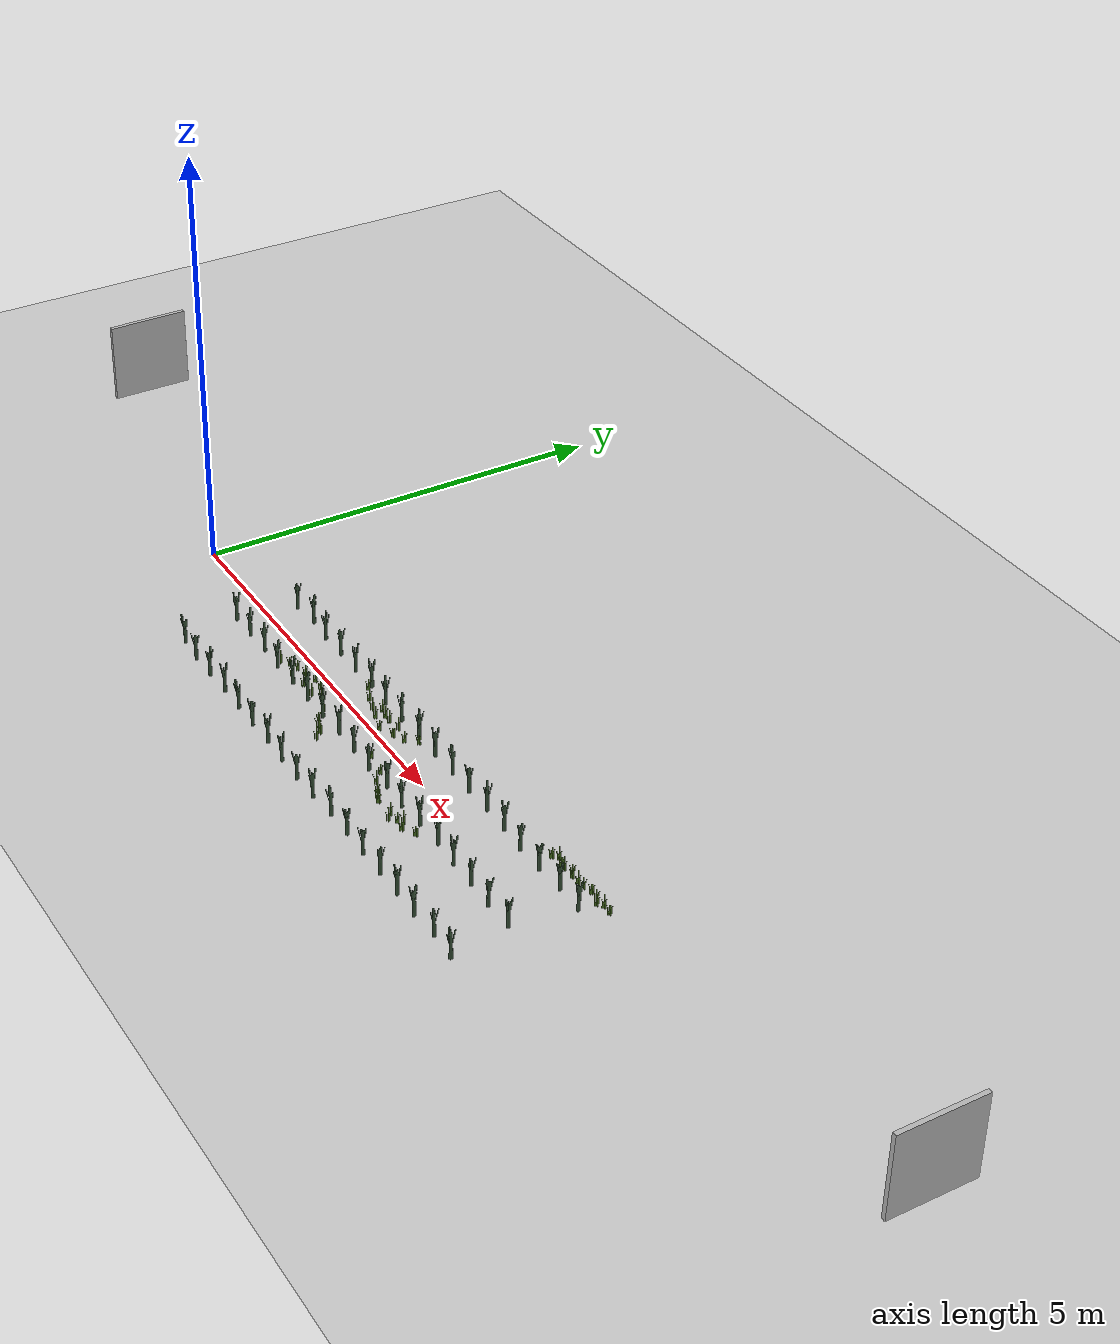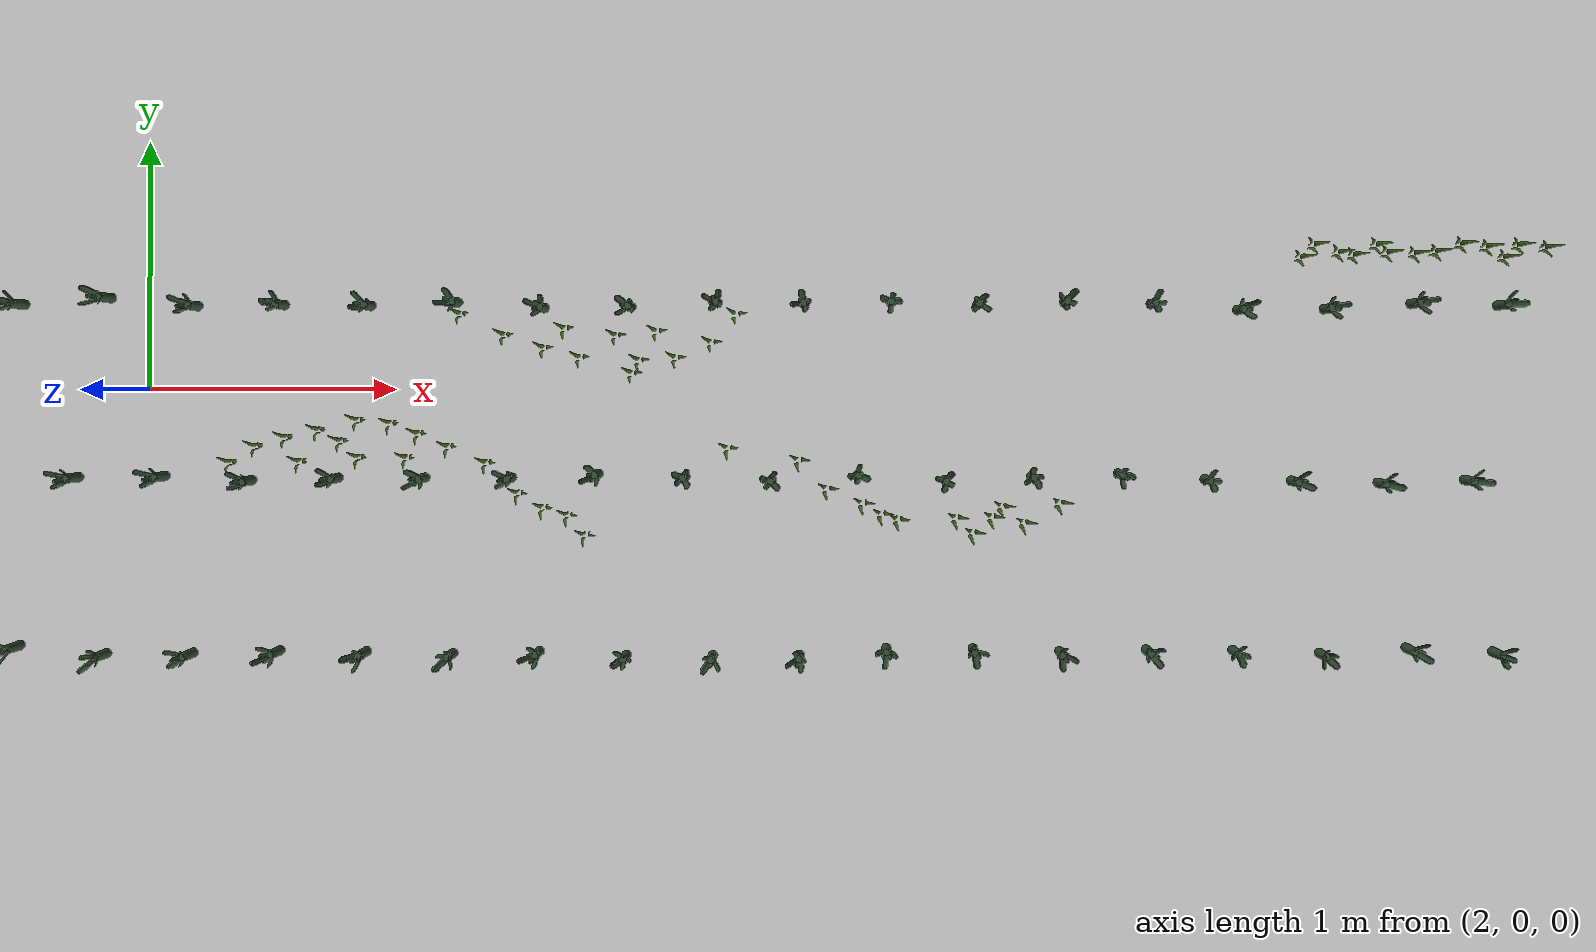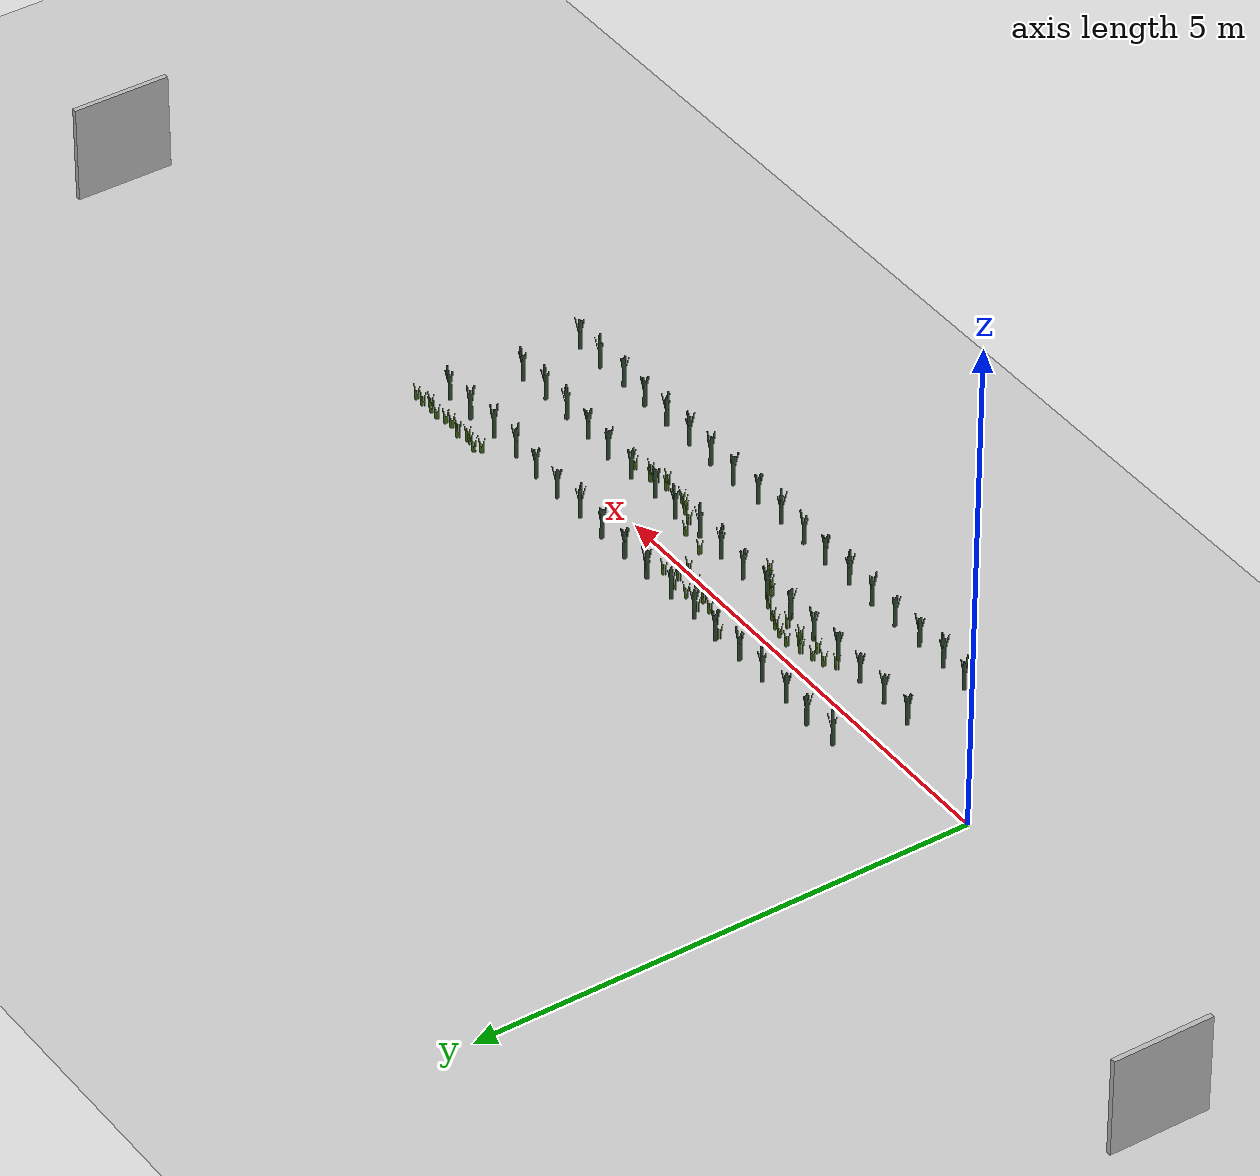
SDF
<sdf version="1.6">
 <world name="default">
  <light name="sun" type="directional">
   <pose>0 0 10 0 -0 0</pose>
   <diffuse>0.5 0.5 0.5 1</diffuse>
   <specular>0.1 0.1 0.1 1</specular>
   <attenuation>
    <range>1000</range>
    <constant>0.9</constant>
    <linear>0.01</linear>
    <quadratic>0.001</quadratic>
   </attenuation>
   <direction>0.9 0.5 -1</direction>
  </light>
  <scene><background>130 200 255 1</background><ambient>130 140 140 1</ambient></scene>
  <include><uri>model://Sign</uri><pose>12 1 0 0 0 0</pose><static>1</static></include>
  <include><uri>model://Sign</uri><pose>-4 1 0 0 0 0</pose><static>1</static></include>
  <include><uri>model://dirt_plane</uri></include>
  <include><uri>model://Leek</uri><pose>1.500000 0.340173 0.15 0 0 -88.447036</pose><static>0</static></include>
  <include><uri>model://Leek</uri><pose>1.850000 0.367709 0.15 0 0 159.377582</pose><static>0</static></include>
  <include>
   <uri>model://Leek</uri>
   <pose>2.200000 0.336135 0.15 0 0 -124.789039</pose>
   <static>0</static>
  </include>
  <include><uri>model://Leek</uri><pose>2.550000 0.341582 0.15 0 0 -75.764405</pose><static>0</static></include>
  <include>
   <uri>model://Leek</uri>
   <pose>2.900000 0.338859 0.15 0 0 -100.265128</pose>
   <static>0</static>
  </include>
  <include><uri>model://Leek</uri><pose>3.250000 0.353683 0.15 0 0 33.151316</pose><static>0</static></include>
  <include>
   <uri>model://Leek</uri>
   <pose>3.600000 0.332666 0.15 0 0 -156.007678</pose>
   <static>0</static>
  </include>
  <include>
   <uri>model://Leek</uri>
   <pose>3.950000 0.337700 0.15 0 0 -110.701626</pose>
   <static>0</static>
  </include>
  <include><uri>model://Leek</uri><pose>4.300000 0.355006 0.15 0 0 45.056901</pose><static>0</static></include>
  <include><uri>model://Leek</uri><pose>4.650000 0.351589 0.15 0 0 14.303026</pose><static>0</static></include>
  <include><uri>model://Leek</uri><pose>5.000000 0.358003 0.15 0 0 72.026591</pose><static>0</static></include>
  <include><uri>model://Leek</uri><pose>5.350000 0.351133 0.15 0 0 10.200760</pose><static>0</static></include>
  <include><uri>model://Leek</uri><pose>5.700000 0.361284 0.15 0 0 101.555401</pose><static>0</static></include>
  <include><uri>model://Leek</uri><pose>6.050000 0.355054 0.15 0 0 45.482131</pose><static>0</static></include>
  <include>
   <uri>model://Leek</uri>
   <pose>6.400000 0.331729 0.15 0 0 -164.437789</pose>
   <static>0</static>
  </include>
  <include>
   <uri>model://Leek</uri>
   <pose>6.750000 0.336580 0.15 0 0 -120.776538</pose>
   <static>0</static>
  </include>
  <include><uri>model://Leek</uri><pose>7.100000 0.358219 0.15 0 0 73.972292</pose><static>0</static></include>
  <include><uri>model://Leek</uri><pose>7.450000 0.352793 0.15 0 0 25.139902</pose><static>0</static></include>
  <include>
   <uri>model://Leek</uri>
   <pose>1.369412 -0.351205 0.15 0 0 -10.848566</pose>
   <static>0</static>
  </include>
  <include>
   <uri>model://Leek</uri>
   <pose>1.719412 -0.355486 0.15 0 0 -49.376952</pose>
   <static>0</static>
  </include>
  <include><uri>model://Leek</uri><pose>2.069412 -0.349901 0.15 0 0 0.893586</pose><static>0</static></include>
  <include>
   <uri>model://Leek</uri>
   <pose>2.419412 -0.365992 0.15 0 0 -143.924926</pose>
   <static>0</static>
  </include>
  <include>
   <uri>model://Leek</uri>
   <pose>2.769412 -0.355537 0.15 0 0 -49.837298</pose>
   <static>0</static>
  </include>
  <include>
   <uri>model://Leek</uri>
   <pose>3.119412 -0.353944 0.15 0 0 -35.496644</pose>
   <static>0</static>
  </include>
  <include>
   <uri>model://Leek</uri>
   <pose>3.469412 -0.353409 0.15 0 0 -30.681226</pose>
   <static>0</static>
  </include>
  <include>
   <uri>model://Leek</uri>
   <pose>3.819412 -0.337213 0.15 0 0 115.082555</pose>
   <static>0</static>
  </include>
  <include><uri>model://Leek</uri><pose>4.169412 -0.347990 0.15 0 0 18.092581</pose><static>0</static></include>
  <include>
   <uri>model://Leek</uri>
   <pose>4.519412 -0.359840 0.15 0 0 -88.562507</pose>
   <static>0</static>
  </include>
  <include>
   <uri>model://Leek</uri>
   <pose>4.869412 -0.336060 0.15 0 0 125.464205</pose>
   <static>0</static>
  </include>
  <include>
   <uri>model://Leek</uri>
   <pose>5.219412 -0.358256 0.15 0 0 -74.305237</pose>
   <static>0</static>
  </include>
  <include><uri>model://Leek</uri><pose>5.569412 -0.342112 0.15 0 0 70.988351</pose><static>0</static></include>
  <include>
   <uri>model://Leek</uri>
   <pose>5.919412 -0.330132 0.15 0 0 178.816123</pose>
   <static>0</static>
  </include>
  <include>
   <uri>model://Leek</uri>
   <pose>6.269412 -0.351917 0.15 0 0 -17.255756</pose>
   <static>0</static>
  </include>
  <include>
   <uri>model://Leek</uri>
   <pose>6.619412 -0.357033 0.15 0 0 -63.294588</pose>
   <static>0</static>
  </include>
  <include>
   <uri>model://Leek</uri>
   <pose>6.969412 -0.364687 0.15 0 0 -132.184699</pose>
   <static>0</static>
  </include>
  <include>
   <uri>model://Leek</uri>
   <pose>7.319412 -0.352097 0.15 0 0 -18.874128</pose>
   <static>0</static>
  </include>
  <include>
   <uri>model://Leek</uri>
   <pose>1.484378 -1.035654 0.15 0 0 129.115225</pose>
   <static>0</static>
  </include>
  <include>
   <uri>model://Leek</uri>
   <pose>1.834378 -1.066972 0.15 0 0 -152.746824</pose>
   <static>0</static>
  </include>
  <include>
   <uri>model://Leek</uri>
   <pose>2.184378 -1.063885 0.15 0 0 -124.964739</pose>
   <static>0</static>
  </include>
  <include>
   <uri>model://Leek</uri>
   <pose>2.534378 -1.053270 0.15 0 0 -29.426862</pose>
   <static>0</static>
  </include>
  <include>
   <uri>model://Leek</uri>
   <pose>2.884378 -1.056624 0.15 0 0 -59.611696</pose>
   <static>0</static>
  </include>
  <include>
   <uri>model://Leek</uri>
   <pose>3.234378 -1.063511 0.15 0 0 -121.600760</pose>
   <static>0</static>
  </include>
  <include>
   <uri>model://Leek</uri>
   <pose>3.584378 -1.053301 0.15 0 0 -29.710869</pose>
   <static>0</static>
  </include>
  <include>
   <uri>model://Leek</uri>
   <pose>3.934378 -1.068813 0.15 0 0 -169.315763</pose>
   <static>0</static>
  </include>
  <include>
   <uri>model://Leek</uri>
   <pose>4.284378 -1.069092 0.15 0 0 -171.832265</pose>
   <static>0</static>
  </include>
  <include>
   <uri>model://Leek</uri>
   <pose>4.634378 -1.066558 0.15 0 0 -149.022220</pose>
   <static>0</static>
  </include>
  <include>
   <uri>model://Leek</uri>
   <pose>4.984378 -1.038509 0.15 0 0 103.416106</pose>
   <static>0</static>
  </include>
  <include><uri>model://Leek</uri><pose>5.334378 -1.038994 0.15 0 0 99.055333</pose><static>0</static></include>
  <include><uri>model://Leek</uri><pose>5.684378 -1.048805 0.15 0 0 10.754929</pose><static>0</static></include>
  <include><uri>model://Leek</uri><pose>6.034378 -1.041727 0.15 0 0 74.461307</pose><static>0</static></include>
  <include><uri>model://Leek</uri><pose>6.384378 -1.042148 0.15 0 0 70.664896</pose><static>0</static></include>
  <include>
   <uri>model://Leek</uri>
   <pose>6.734378 -1.052557 0.15 0 0 -23.014204</pose>
   <static>0</static>
  </include>
  <include>
   <uri>model://Leek</uri>
   <pose>7.084378 -1.031216 0.15 0 0 169.060088</pose>
   <static>0</static>
  </include>
  <include><uri>model://Leek</uri><pose>7.434378 -1.045677 0.15 0 0 38.905673</pose><static>0</static></include>
  <include><uri>model://Grass</uri><pose>2.34029 -0.291745 0 0 -0 0</pose><static>1</static></include>
  <include><uri>model://Grass</uri><pose>2.4448 -0.226501 0 0 -0 0</pose><static>1</static></include>
  <include><uri>model://Grass</uri><pose>2.56409 -0.190453 0 0 -0 0</pose><static>1</static></include>
  <include><uri>model://Grass</uri><pose>2.69556 -0.160797 0 0 -0 0</pose><static>1</static></include>
  <include><uri>model://Grass</uri><pose>3.05031 -0.27232 0 0 -0 0</pose><static>1</static></include>
  <include><uri>model://Grass</uri><pose>3.26434 0.309193 0 0 -0 0</pose><static>1</static></include>
  <include><uri>model://Grass</uri><pose>3.44294 0.224645 0 0 -0 0</pose><static>1</static></include>
  <include><uri>model://Grass</uri><pose>4.74557 -0.391794 0 0 -0 0</pose><static>1</static></include>
  <include><uri>model://Grass</uri><pose>5.03233 -0.515364 0 0 -0 0</pose><static>1</static></include>
  <include><uri>model://Grass</uri><pose>4.96565 -0.493128 0 0 -0 0</pose><static>1</static></include>
  <include><uri>model://Grass</uri><pose>4.34545 -0.229694 0 0 -0 0</pose><static>1</static></include>
  <include><uri>model://Grass</uri><pose>4.63102 -0.277476 0 0 -0 0</pose><static>1</static></include>
  <include><uri>model://Grass</uri><pose>7.64122 0.590489 0 0 -0 0</pose><static>1</static></include>
  <include><uri>model://Grass</uri><pose>7.40155 0.592621 0 0 -0 0</pose><static>1</static></include>
  <include><uri>model://Grass</uri><pose>7.1964 0.573075 0 0 -0 0</pose><static>1</static></include>
  <include><uri>model://Grass</uri><pose>7 0.567642 0 0 -0 0</pose><static>1</static></include>
  <include><uri>model://Grass</uri><pose>6.80373 0.568265 0 0 -0 0</pose><static>1</static></include>
  <include><uri>model://Grass</uri><pose>6.65038 0.548206 0 0 -0 0</pose><static>1</static></include>
  <include><uri>model://Grass</uri><pose>6.86338 0.557376 0 0 -0 0</pose><static>1</static></include>
  <include><uri>model://Grass</uri><pose>5.33412 -0.567918 0 0 -0 0</pose><static>1</static></include>
  <include><uri>model://Grass</uri><pose>6.9559 0.599059 0 0 -0 0</pose><static>1</static></include>
  <include><uri>model://Grass</uri><pose>7.11013 0.565026 0 0 -0 0</pose><static>1</static></include>
  <include><uri>model://Grass</uri><pose>7.29787 0.603918 0 0 -0 0</pose><static>1</static></include>
  <include><uri>model://Grass</uri><pose>7.47161 0.550224 0 0 -0 0</pose><static>1</static></include>
  <include><uri>model://Grass</uri><pose>7.52756 0.599362 0 0 -0 0</pose><static>1</static></include>
  <include><uri>model://Grass</uri><pose>6.70457 0.598916 0 0 -0 0</pose><static>1</static></include>
  <include><uri>model://Grass</uri><pose>5.53959 -0.526766 0 0 -0 0</pose><static>1</static></include>
  <include><uri>model://Grass</uri><pose>5.68421 -0.447125 0 0 -0 0</pose><static>1</static></include>
  <include><uri>model://Grass</uri><pose>5.41154 -0.504498 0 0 -0 0</pose><static>1</static></include>
  <include><uri>model://Grass</uri><pose>5.26645 -0.508658 0 0 -0 0</pose><static>1</static></include>
  <include><uri>model://Grass</uri><pose>5.26645 -0.508658 0 0 -0 0</pose><static>1</static></include>
  <include><uri>model://Grass</uri><pose>5.45141 -0.46103 0 0 -0 0</pose><static>1</static></include>
  <include><uri>model://Grass</uri><pose>4.88901 -0.449994 0 0 -0 0</pose><static>1</static></include>
  <include><uri>model://Grass</uri><pose>3.60262 0.172685 0 0 -0 0</pose><static>1</static></include>
  <include><uri>model://Grass</uri><pose>3.7492 0.134706 0 0 -0 0</pose><static>1</static></include>
  <include><uri>model://Grass</uri><pose>3.95819 0.072067 0 0 -0 0</pose><static>1</static></include>
  <include><uri>model://Grass</uri><pose>4.13436 0.134191 0 0 -0 0</pose><static>1</static></include>
  <include><uri>model://Grass</uri><pose>4.27786 0.19599 0 0 -0 0</pose><static>1</static></include>
  <include><uri>model://Grass</uri><pose>4.37709 0.310747 0 0 -0 0</pose><static>1</static></include>
  <include><uri>model://Grass</uri><pose>4 0.1228 0.168952 0 -0 0</pose><static>1</static></include>
  <include><uri>model://Grass</uri><pose>2.85285 -0.120544 0 0 -0 0</pose><static>1</static></include>
  <include><uri>model://Grass</uri><pose>4.05725 0.241411 0 0 -0 0</pose><static>1</static></include>
  <include><uri>model://Grass</uri><pose>3.6865 0.251185 0 0 -0 0</pose><static>1</static></include>
  <include><uri>model://Grass</uri><pose>3.8936 0.223629 0 0 -0 0</pose><static>1</static></include>
  <include><uri>model://Grass</uri><pose>2.98511 -0.13313 0 0 -0 0</pose><static>1</static></include>
  <include><uri>model://Grass</uri><pose>3.09742 -0.174831 0 0 -0 0</pose><static>1</static></include>
  <include><uri>model://Grass</uri><pose>3.2186 -0.227124 0 0 -0 00</pose><static>1</static></include>
  <include><uri>model://Grass</uri><pose>3.37189 -0.291335 0 0 -0 0</pose><static>1</static></include>
  <include><uri>model://Grass</uri><pose>3.50189 -0.41335 0 0 -0 0</pose><static>1</static></include>
  <include><uri>model://Grass</uri><pose>3.60189 -0.471335 0 0 -0 0</pose><static>1</static></include>
  <include><uri>model://Grass</uri><pose>3.70189 -0.501335 0 0 -0 0</pose><static>1</static></include>
  <include><uri>model://Grass</uri><pose>3.77189 -0.581335 0 0 -0 0</pose><static>1</static></include>
  <include><uri>model://Grass</uri><pose>2.85756 -0.270177 0 0 -0 0</pose><static>1</static></include>
  <include><uri>model://Grass</uri><pose>2.62087 -0.288178 0 0 -0 0</pose><static>1</static></include>
  <include><uri>model://Grass</uri><pose>2.78504 -0.204906 0 0 -0 0</pose><static>1</static></include>
 </world>
</sdf>

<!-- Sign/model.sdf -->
<sdf version='1.6'>
  <model name='Sign'>
    <link name='link'>
      <pose frame=''>0 0 0 0 -0 0</pose>
      <inertial>
        <mass>1</mass>
        <inertia>
          <ixx>0.166667</ixx>
          <ixy>0</ixy>
          <ixz>0</ixz>
          <iyy>0.166667</iyy>
          <iyz>0</iyz>
          <izz>0.166667</izz>
        </inertia>
        <pose frame=''>0 0 0 0 -0 0</pose>
      </inertial>
      <self_collide>0</self_collide>
      <kinematic>0</kinematic>
      <gravity>1</gravity>
      <visual name='visual'>
        <geometry>
          <box>
            <size>1 0.05 1</size>
          </box>
        </geometry>
        <material>
          <script>
            <uri>model://ground_plane/materials/scripts/my_ground_plane.material</uri>
            <uri>model://ground_plane/materials/textures</uri>
            <name>my_ground_plane/NaioLogo</name>
          </script>
        </material>
        <pose frame=''>0 0 0.5 0 -0 1.57</pose>
        <cast_shadows>1</cast_shadows>
        <transparency>0</transparency>
      </visual>
    </link>
    <static>1</static>
    <allow_auto_disable>1</allow_auto_disable>
  </model>
</sdf>

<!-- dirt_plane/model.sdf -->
<sdf version="1.4">
<model name="dirt_plane">
  <static>true</static>
    <link name="link">
      <collision name="collision">
        <geometry>
          <plane>
            <normal>0 0 1</normal>
            <size>100 100</size>
          </plane>
        </geometry>
        <surface>
          <friction>
            <ode>
              <mu>100</mu>
              <mu2>50</mu2>
            </ode>
          </friction>
        </surface>
      </collision>
      <visual name="visual">
        <cast_shadows>false</cast_shadows>
        <geometry>
          <plane>
            <normal>0 0 1</normal>
            <size>100 100</size>
          </plane>
        </geometry>
        <material>
          <script>
            <uri>model://ground_plane/materials/scripts/my_ground_plane.material</uri>
            <uri>model://ground_plane/materials/textures</uri>
            <name>my_ground_plane/Dirt</name>
          </script>
        </material>
      </visual>
    </link>
  </model>
</sdf>

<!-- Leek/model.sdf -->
<sdf version='1.6'>
  <model name='Leek'>
    <link name='link'>
      <pose frame=''>0 0 0 0 -0 0</pose>
      <inertial>
        <mass>1</mass>
        <inertia>
          <ixx>0.145833</ixx>
          <ixy>0</ixy>
          <ixz>0</ixz>
          <iyy>0.145833</iyy>
          <iyz>0</iyz>
          <izz>0.125</izz>
        </inertia>
        <pose frame=''>0 0 0 0 -0 0</pose>
      </inertial>
      <self_collide>0</self_collide>
      <kinematic>0</kinematic>
      <gravity>1</gravity>
      <visual name='visual'>
        <geometry>
          <mesh>
            <uri>model://Leek/Poireau.dae</uri>
            <scale>1 1 1</scale>
          </mesh>
        </geometry>
        <material>
          <script>
            <name>Gazebo/Grey</name>
            <uri>file://media/materials/scripts/gazebo.material</uri>
          </script>
          <ambient>0.3 0.7 0.4 0</ambient>
          <diffuse>0.2 0.3 0.2 0</diffuse>
          <specular>0 0 0 1</specular>
          <emissive>0 0 0 1</emissive>
          <shader type='vertex'>
            <normal_map>__default__</normal_map>
          </shader>
        </material>
        <pose frame=''>0 0 -0.08 0 -0 0</pose>
        <cast_shadows>1</cast_shadows>
        <transparency>0</transparency>
      </visual>
      <collision name='collision'>
        <laser_retro>0</laser_retro>
        <max_contacts>10</max_contacts>
        <pose frame=''>0 0 0 0 -0 0</pose>
        <geometry>
          <cylinder>
            <radius>0.02</radius>
            <length>0.25</length>
          </cylinder>
        </geometry>
        <surface>
          <friction>
            <ode>
              <mu>1</mu>
              <mu2>1</mu2>
              <fdir1>0 0 0</fdir1>
              <slip1>0</slip1>
              <slip2>0</slip2>
            </ode>
            <torsional>
              <coefficient>1</coefficient>
              <patch_radius>0</patch_radius>
              <surface_radius>0</surface_radius>
              <use_patch_radius>1</use_patch_radius>
              <ode>
                <slip>0</slip>
              </ode>
            </torsional>
          </friction>
          <bounce>
            <restitution_coefficient>0</restitution_coefficient>
            <threshold>1e+06</threshold>
          </bounce>
          <contact>
            <collide_without_contact>0</collide_without_contact>
            <collide_without_contact_bitmask>1</collide_without_contact_bitmask>
            <collide_bitmask>1</collide_bitmask>
            <ode>
              <soft_cfm>0</soft_cfm>
              <soft_erp>0.2</soft_erp>
              <kp>1e+13</kp>
              <kd>1</kd>
              <max_vel>0.01</max_vel>
              <min_depth>0</min_depth>
            </ode>
            <bullet>
              <split_impulse>1</split_impulse>
              <split_impulse_penetration_threshold>-0.01</split_impulse_penetration_threshold>
              <soft_cfm>0</soft_cfm>
              <soft_erp>0.2</soft_erp>
              <kp>1e+13</kp>
              <kd>1</kd>
            </bullet>
          </contact>
        </surface>
      </collision>
    </link>
    <static>0</static>
    <allow_auto_disable>1</allow_auto_disable>
  </model>
</sdf>

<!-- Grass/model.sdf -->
<sdf version='1.6'>
  <model name='Grass'>
    <link name='link'>
      <pose frame=''>0 0 0 0 -0 0</pose>
      <inertial>
        <mass>1</mass>
        <inertia>
          <ixx>0.145833</ixx>
          <ixy>0</ixy>
          <ixz>0</ixz>
          <iyy>0.145833</iyy>
          <iyz>0</iyz>
          <izz>0.125</izz>
        </inertia>
        <pose frame=''>0 0 0 0 -0 0</pose>
      </inertial>
      <self_collide>0</self_collide>
      <kinematic>0</kinematic>
      <gravity>1</gravity>
      <visual name='visual'>
        <geometry>
          <mesh>
            <uri>model://Grass/Herbe.dae</uri>
            <scale>1 1 1</scale>
          </mesh>
        </geometry>
        <material>
          <script>
            <name>Gazebo/Grey</name>
            <uri>file://media/materials/scripts/gazebo.material</uri>
          </script>
          <ambient>0.9 1 0.5 0</ambient>
          <diffuse>0.25 0.4 0.1 0</diffuse>
          <specular>0 0 0 1</specular>
          <emissive>0 0 0 1</emissive>
          <shader type='vertex'>
            <normal_map>__default__</normal_map>
          </shader>
        </material>
        <pose frame=''>0 0 0 0 -0 0</pose>
        <cast_shadows>1</cast_shadows>
        <transparency>0</transparency>
      </visual>
    </link>
    <static>1</static>
    <allow_auto_disable>1</allow_auto_disable>
  </model>
</sdf>
